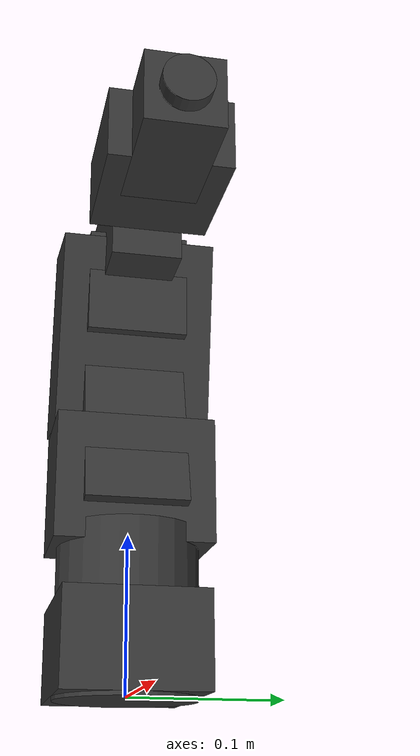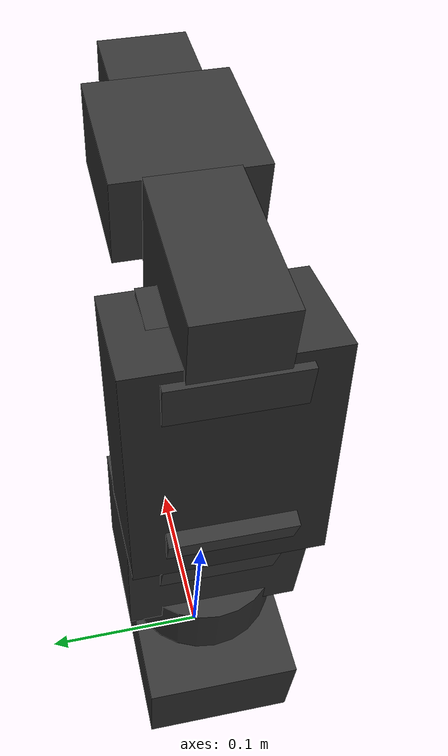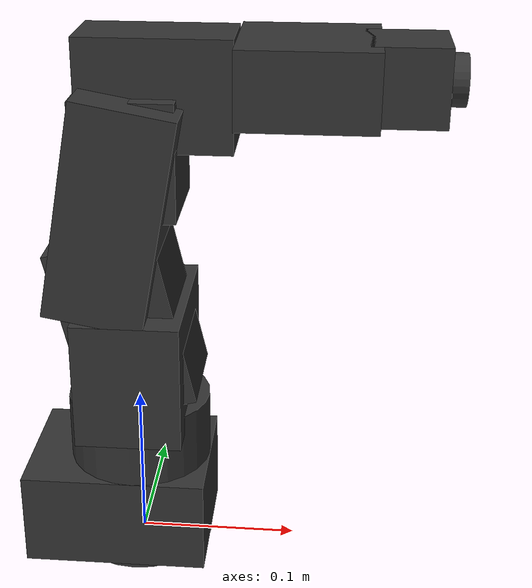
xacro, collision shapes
<?xml version="1.0"?>
<robot xmlns:xacro="http://www.ros.org/wiki/xacro" name="Meca500_R4">
  <xacro:arg name="robot_ip" default="192.168.0.100"/>
  <xacro:arg name="sim_mode" default="true"/>
  <xacro:arg name="name" default="DummyBot"/>
  <xacro:arg name="alone" default="false"/>

  <xacro:include filename="meca500_description.macro.xacro"/>
  <xacro:include filename="meca500.ros2_control.macro.xacro"/>
  <xacro:include filename="meca500.gazebo.macro.xacro"/>

  <link name="robot_base">
    <inertial>
      <mass value="0.001"/>
      <inertia ixx="0.0001" ixy="0" ixz="0" iyy="0.0001" iyz="0" izz="0.0001"/>
    </inertial>
  </link>

  <!-- Description -->
  <xacro:meca500_descrip parent="robot_base">
    <origin xyz="0 0 0" rpy="0 0 0"/>
  </xacro:meca500_descrip>

  <!-- Control -->
  <xacro:meca500_ros2_control name="$(arg name)" robot_ip="$(arg robot_ip)" sim_mode="$(arg sim_mode)"/>
  <!-- Gz -->
  <xacro:meca500_gazebo/>
</robot>

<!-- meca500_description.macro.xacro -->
<robot xmlns:xacro="http://www.ros.org/wiki/xacro">
  <xacro:macro name="meca500_descrip" params="parent *origin">

    <material name="grey">
      <color rgba="0.2 0.2 0.2 1.0"/>
    </material>

    <joint name="${parent}_to_base_link" type="fixed">
      <xacro:insert_block name="origin" />
      <parent link="${parent}"/>
      <child link="base_link"/>
    </joint>

    <link name="base_link">
      <visual>
        <origin xyz="0 0 0" rpy="0 0 0"/>
        <geometry>
          <mesh filename="package://meca500_description/meshes/link_0.dae"/>
        </geometry>
        <material name="grey"/>
      </visual>
      <collision>
        <origin xyz="0 0 0.05" rpy="0 0 0"/>
        <geometry>
          <cylinder radius="0.045" length="0.105"/>
        </geometry>
      </collision>
      <collision>
        <origin xyz="-0.0125 0 0.03" rpy="0 0 0"/>
        <geometry>
          <box size="0.115 0.090 0.06"/>
        </geometry>
      </collision>
    </link>

    <joint name="meca_axis_1" type="revolute">
      <parent link="base_link"/>
      <child link="link_1"/>
      <origin xyz="0 0 0.135" rpy="0 0 0"/> <axis xyz="0 0 1"/>
      <limit lower="-3.05" upper="3.05" effort="8.4" velocity="3.926"/>
    </joint>

    <link name="link_1">
      <visual>
        <origin xyz="0 0 0" rpy="0 0 0"/>
        <geometry>
          <mesh filename="package://meca500_description/meshes/link_1.dae"/>
        </geometry>
        <material name="grey"/>
      </visual>
      <inertial>
        <origin xyz="-0.00002037431904 0.002013004158 -0.02297639135" rpy="0 0 0"/>
        <mass value="0.5431025133"/>
        <inertia ixx="0.000915685257" ixy="5.49E-07" ixz="4.28E-07" iyy="0.0005022985235" iyz="0.00002704049297" izz="0.0008332485299"/>
      </inertial>
      <collision>
        <origin xyz="0 0 -0.005" rpy="0 0 0"/>
        <geometry>
          <box size="0.065 0.1 0.08"/>
        </geometry>
      </collision>
    </link>

    <joint name="meca_axis_2" type="revolute">
      <parent link="link_1"/>
      <child link="link_2"/>
      <origin xyz="0 0 0" rpy="0 0 0"/> <axis xyz="0 1 0"/>
      <limit lower="-1.22" upper="1.57" effort="8.4" velocity="3.926"/>
    </joint>

    <link name="link_2">
      <visual>
        <origin xyz="0 0 0" rpy="0 0 0"/>
        <geometry>
          <mesh filename="package://meca500_description/meshes/link_2.dae"/>
        </geometry>
        <material name="grey"/>
      </visual>
      <inertial>
        <origin xyz="-0.005076026623 0.006334754388 0.04691754408" rpy="1.57 -1.57 0"/>
        <mass value="1.209363494"/>
        <inertia ixx="0.001457420783" ixy="0.00009498376543" ixz="0.00001941186918" iyy="0.003988341228" iyz="0.00001173538506" izz="0.003332374168"/>
      </inertial>
      <collision>
        <origin xyz="-0.005 0 0.025" rpy="0 -0.23 0"/>
        <geometry>
          <box size="0.067 0.065 0.11"/>
        </geometry>
      </collision>
      <collision>
        <origin xyz="-0.007 0 0.10" rpy="0 0.18 0"/>
        <geometry>
          <box size="0.06 0.1 0.13"/>
        </geometry>
      </collision>
    </link>

    <joint name="meca_axis_3" type="revolute">
      <parent link="link_2"/>
      <child link="link_3"/>
      <origin xyz="0 0 0.135" rpy="0 0 0"/> <axis xyz="0 1 0"/>
      <limit lower="-2.35" upper="1.22" effort="8.4" velocity="3.926"/>
    </joint>

    <link name="link_3">
      <visual>
        <origin xyz="0 0 0" rpy="0 0 0"/>
        <geometry>
          <mesh filename="package://meca500_description/meshes/link_3.dae"/>
        </geometry>
        <material name="grey"/>
      </visual>
      <inertial>
        <origin xyz="0.009862786694 0.00343262302 0.01508651673" rpy="1.57 0 0"/>
        <mass value="0.8980717937"/>
        <inertia ixx="0.0006999643903" ixy="-0.0001856385329" ixz="0.00005438767026" iyy="0.0008589980073" iyz="0.00003237561764" izz="0.00103125794"/>
      </inertial>
      <collision>
        <origin xyz="0.017 0 0.03" rpy="0 0 0"/>
        <geometry>
          <box size="0.09 0.045 0.065"/>
        </geometry>
      </collision>
      <collision>
        <origin xyz="0 0 -0.006" rpy="0 0 0"/>
        <geometry>
          <box size="0.06 0.065 0.07"/>
        </geometry>
      </collision>
    </link>

    <joint name="meca_axis_4" type="revolute">
      <parent link="link_3"/>
      <child link="link_4"/>
      <origin xyz="0 0 0.038" rpy="0 1.5708 0"/> <axis xyz="0 0 1"/>
      <limit lower="-2.96" upper="2.96" effort="1.25" velocity="6.108"/>
    </joint>

    <link name="link_4">
      <visual>
        <origin xyz="0 0 0.120" rpy="0 0 3.14159265"/>
        <geometry>
          <mesh filename="package://meca500_description/meshes/link_4.dae"/>
        </geometry>
        <material name="grey"/>
      </visual>
      <inertial>
        <origin xyz="0.00006098710044 0.00224976832 0.08976460875" rpy="0 0 3.1415"/>
        <mass value="0.2093565436"/>
        <inertia ixx="0.0002307486811" ixy="-2.55E-07" ixz="-1.76E-07" iyy="0.0001528092348" iyz="-0.00001834894489" izz="0.0001573266858"/>
      </inertial>
      <collision>
        <origin xyz="0 0 0.1025" rpy="0 0 0"/>
        <geometry>
          <box size="0.045 0.075 0.08"/>
        </geometry>
      </collision>
    </link>

    <joint name="meca_axis_5" type="revolute">
      <parent link="link_4"/>
      <child link="link_5"/>
      <origin xyz="0 0 0.120" rpy="0 0 0"/> <axis xyz="0 1 0"/>
      <limit lower="-2.00" upper="2.00" effort="1.25" velocity="6.108"/>
    </joint>

    <link name="link_5">
      <visual>
        <origin xyz="0 0 0" rpy="0 0 0"/>
        <geometry>
          <mesh filename="package://meca500_description/meshes/link_5.dae"/>
        </geometry>
        <material name="grey"/>
      </visual>
      <inertial>
        <origin xyz="0.0000355330703 0.003727390331 0.02216669127" rpy="1.57 0 3.1415"/>
        <mass value="0.4881954861"/>
        <inertia ixx="0.0004368686961" ixy="8.60E-07" ixz="-3.41E-07" iyy="0.0001588423228" iyz="0.00002942257626" izz="0.0004066877932"/>
      </inertial>
      <collision>
        <origin xyz="0 0 0.02" rpy="0 0 0"/>
        <geometry>
          <box size="0.045 0.047 0.08"/>
        </geometry>
      </collision>
    </link>

    <joint name="meca_axis_6" type="revolute">
      <parent link="link_5"/>
      <child link="link_6"/>
      <origin xyz="0 0 0.070" rpy="0 0 0"/> <axis xyz="0 0 1"/>
      <limit lower="-6.28" upper="6.28" effort="0.75" velocity="8.726"/>
    </joint>

    <link name="link_6">
      <visual>
        <origin xyz="0 0 0" rpy="0 0 0"/>
        <geometry>
          <mesh filename="package://meca500_description/meshes/link_6.dae"/>
        </geometry>
        <material name="grey"/>
      </visual>
      <inertial>
        <origin xyz="0 0 0" rpy="0 0 0"/>
        <mass value="0.05"/>
        <inertia ixx="0.0001" ixy="0" ixz="0" iyy="0.0001" iyz="0" izz="0.0001"/>
      </inertial>
      <collision>
        <origin xyz="0 0 -0.01" rpy="0 0 0"/>
        <geometry>
          <cylinder radius="0.015" length="0.02"/>
        </geometry>
      </collision>
    </link>

  </xacro:macro>
</robot>
